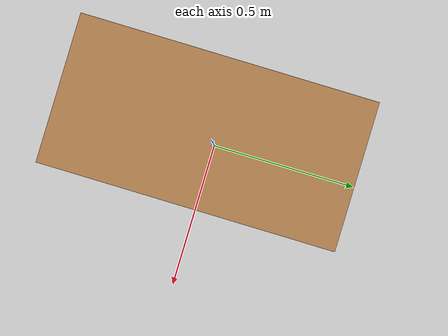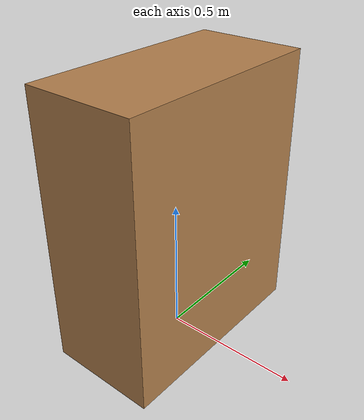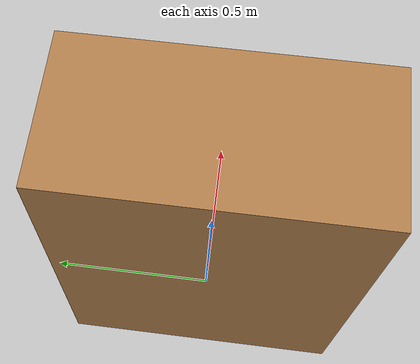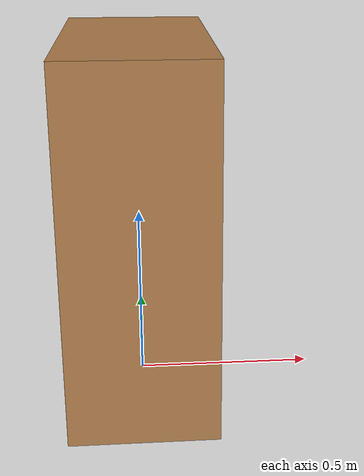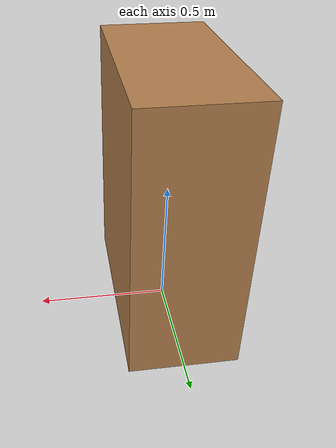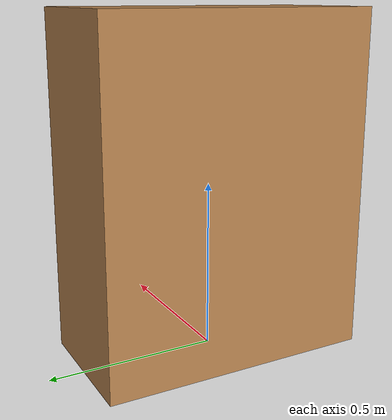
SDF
<?xml version='1.0'?>
<sdf version="1.5">
<model name="dresser">
  <pose>0 0 0.5 0 0 0</pose>
  <static>true</static>
    <link name="link">
      <inertial>
        <mass>1.0</mass>
        <inertia>
          <ixx>0.083</ixx>       <!-- for a box: ixx = 0.083 * mass * (y*y + z*z) -->
          <ixy>0.0</ixy>         <!-- for a box: ixy = 0 -->
          <ixz>0.0</ixz>         <!-- for a box: ixz = 0 -->
          <iyy>0.083</iyy>       <!-- for a box: iyy = 0.083 * mass * (x*x + z*z) -->
          <iyz>0.0</iyz>         <!-- for a box: iyz = 0 -->
          <izz>0.083</izz>       <!-- for a box: izz = 0.083 * mass * (x*x + y*y) -->
        </inertia>
      </inertial>
      <collision name="collision">
        <geometry>
          <box>
            <size>0.4 0.8 1</size>
          </box>
        </geometry>
      </collision>
      <visual name="visual">
        <geometry>
          <box>
            <size>0.4 0.8 1</size>
          </box>
        </geometry>
        <material>
          <script>
            <uri>file://media/materials/scripts/gazebo.material</uri>
            <name>Gazebo/Wood</name>
          </script>
        </material>
      </visual>
    </link>
  </model>
</sdf>
